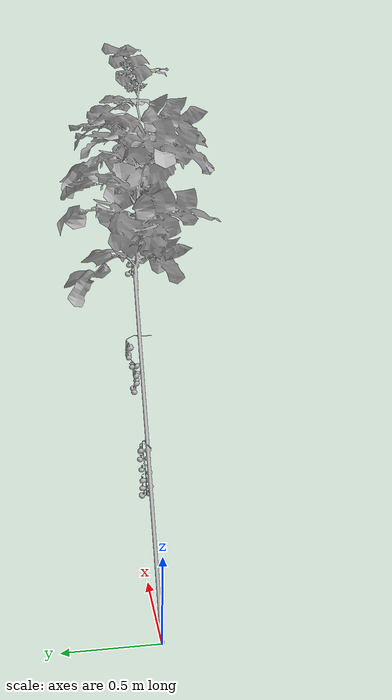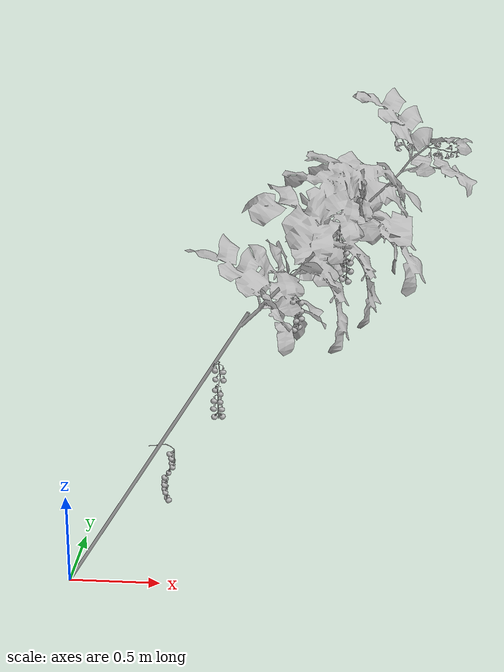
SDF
<?xml version="1.0"?>
<sdf version="1.6">
  <model name="tomato_vine_repo_v11">
    <static>true</static>
    <link name="link">
      <collision name="collision_trunk">
        <geometry><cylinder><radius>0.014</radius><length>1.871</length></cylinder></geometry>
        <pose>0.4940 0 0.7945 0 0.5563 0</pose>
      </collision>
      <visual name="plant">
        <geometry>
          <mesh>
            <uri>model://tomato_vine_repo_v11/meshes/tomato_vine_repo_v11.dae</uri>
          </mesh>
        </geometry>
      </visual>
    </link>
  </model>
</sdf>
